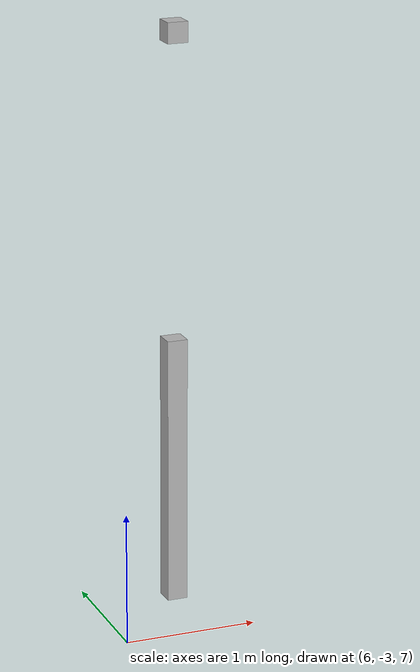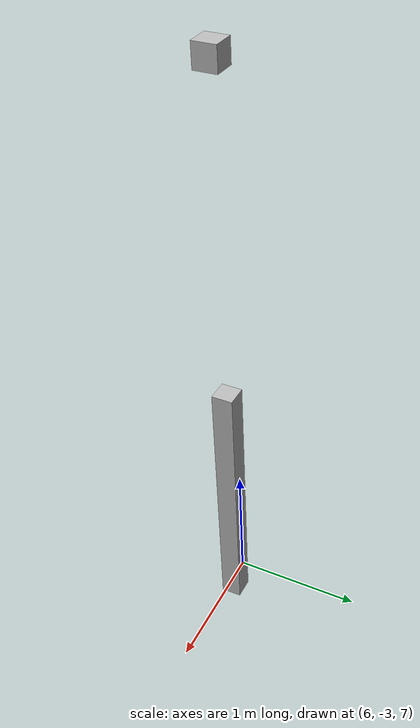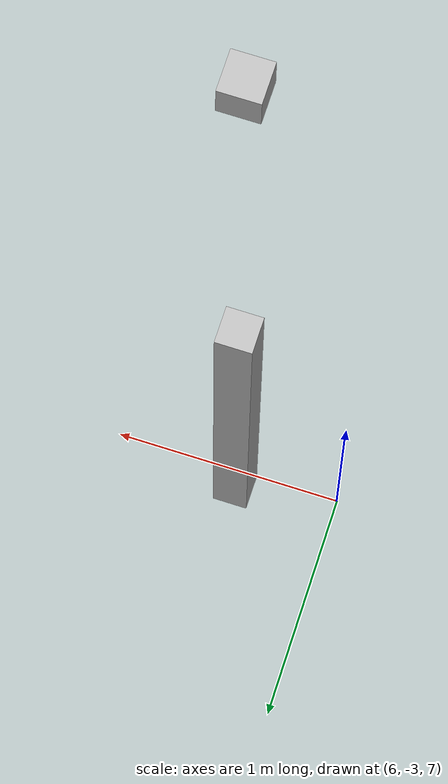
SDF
<sdf version="1.7">
 <world name="default">
  <model name="orthogonal_747_2.000.15_TS">
   <static>1</static>
   <link name="z_link_5_1_6">
    <inertial>
     <mass>1</mass>
     <inertia>
      <ixx>0.166667</ixx>
      <ixy>0</ixy>
      <ixz>0</ixz>
      <iyy>0.166667</iyy>
      <iyz>0</iyz>
      <izz>0.166667</izz>
     </inertia>
    </inertial>
    <pose>12.9 2.15 10.75 0 -0 0</pose>
    <visual name="visual_0">
     <laser_retro>4726</laser_retro>
     <geometry><box><size>0.15 1e-06 2</size></box></geometry>
     <material>
      <script><name>Gazebo/Grey</name><uri>file://media/materials/scripts/gazebo.material</uri></script>
      <shader type="pixel"><normal_map>__default__</normal_map></shader>
      <ambient>0.678 0.498 0.659 1</ambient>
      <diffuse>0.7 0.7 0.7 1</diffuse>
      <specular>0.01 0.01 0.01 1</specular>
      <emissive>0 0 0 1</emissive>
     </material>
     <pose>0 -0.075 0 0 -0 0</pose>
     <transparency>1</transparency>
    </visual>
    <visual name="visual_1">
     <laser_retro>4727</laser_retro>
     <geometry><box><size>0.15 1e-06 2</size></box></geometry>
     <material>
      <script><name>Gazebo/Grey</name><uri>file://media/materials/scripts/gazebo.material</uri></script>
      <shader type="pixel"><normal_map>__default__</normal_map></shader>
      <ambient>0.447 0.624 0.812 1</ambient>
      <diffuse>0.7 0.7 0.7 1</diffuse>
      <specular>0.01 0.01 0.01 1</specular>
      <emissive>0 0 0 1</emissive>
     </material>
     <pose>0 0.075 0 0 -0 0</pose>
     <transparency>1</transparency>
    </visual>
    <visual name="visual_2">
     <laser_retro>4728</laser_retro>
     <geometry><box><size>0.15 0.15 1e-06</size></box></geometry>
     <material>
      <script><name>Gazebo/Grey</name><uri>file://media/materials/scripts/gazebo.material</uri></script>
      <shader type="pixel"><normal_map>__default__</normal_map></shader>
      <ambient>0.988 0.686 0.243 1</ambient>
      <diffuse>0.7 0.7 0.7 1</diffuse>
      <specular>0.01 0.01 0.01 1</specular>
      <emissive>0 0 0 1</emissive>
     </material>
     <pose>0 0 -1 0 -0 0</pose>
     <transparency>1</transparency>
    </visual>
    <visual name="visual_3">
     <laser_retro>4729</laser_retro>
     <geometry><box><size>1e-06 0.15 2</size></box></geometry>
     <material>
      <script><name>Gazebo/Grey</name><uri>file://media/materials/scripts/gazebo.material</uri></script>
      <shader type="pixel"><normal_map>__default__</normal_map></shader>
      <ambient>0.988 0.914 0.31 1</ambient>
      <diffuse>0.7 0.7 0.7 1</diffuse>
      <specular>0.01 0.01 0.01 1</specular>
      <emissive>0 0 0 1</emissive>
     </material>
     <pose>0.075 0 0 0 -0 0</pose>
     <transparency>1</transparency>
    </visual>
    <visual name="visual_4">
     <laser_retro>4730</laser_retro>
     <geometry><box><size>0.15 0.15 1e-06</size></box></geometry>
     <material>
      <script><name>Gazebo/Grey</name><uri>file://media/materials/scripts/gazebo.material</uri></script>
      <shader type="pixel"><normal_map>__default__</normal_map></shader>
      <ambient>0.937 0.161 0.161 1</ambient>
      <diffuse>0.7 0.7 0.7 1</diffuse>
      <specular>0.01 0.01 0.01 1</specular>
      <emissive>0 0 0 1</emissive>
     </material>
     <pose>0 0 1 0 -0 0</pose>
     <transparency>1</transparency>
    </visual>
    <visual name="visual_5">
     <laser_retro>4731</laser_retro>
     <geometry><box><size>1e-06 0.15 2</size></box></geometry>
     <material>
      <script><name>Gazebo/Grey</name><uri>file://media/materials/scripts/gazebo.material</uri></script>
      <shader type="pixel"><normal_map>__default__</normal_map></shader>
      <ambient>0.541 0.886 0.204 1</ambient>
      <diffuse>0.7 0.7 0.7 1</diffuse>
      <specular>0.01 0.01 0.01 1</specular>
      <emissive>0 0 0 1</emissive>
     </material>
     <pose>-0.075 0 0 0 -0 0</pose>
     <transparency>1</transparency>
    </visual>
    <visual name="visual_texture">
     <geometry><box><size>0.149985 0.149985 1.9998</size></box></geometry>
     <material>
      <script>
       <uri>model://BASE_MODELS/simple_block_v2_textured/materials/scripts</uri>
       <uri>model://BASE_MODELS/simple_block_v2_textured/materials/textures</uri>
       <name>metal</name>
      </script>
     </material>
     <laser_retro>4732</laser_retro>
    </visual>
    <collision name="collision">
     <geometry><box><size>0.15 0.15 2</size></box></geometry>
     <surface>
      <friction>
       <ode><mu>1</mu><mu2>1</mu2><fdir1>0 0 0</fdir1><slip1>0</slip1><slip2>0</slip2></ode>
       <torsional>
        <coefficient>1</coefficient>
        <patch_radius>0</patch_radius>
        <surface_radius>0</surface_radius>
        <use_patch_radius>1</use_patch_radius>
        <ode><slip>0</slip></ode>
       </torsional>
      </friction>
      <bounce><restitution_coefficient>0</restitution_coefficient><threshold>1e+06</threshold></bounce>
      <contact>
       <collide_without_contact>0</collide_without_contact>
       <collide_without_contact_bitmask>1</collide_without_contact_bitmask>
       <collide_bitmask>1</collide_bitmask>
       <ode>
        <soft_cfm>0</soft_cfm>
        <soft_erp>0.2</soft_erp>
        <kp>1e+13</kp>
        <kd>1</kd>
        <max_vel>0.01</max_vel>
        <min_depth>0</min_depth>
       </ode>
       <bullet>
        <split_impulse>1</split_impulse>
        <split_impulse_penetration_threshold>-0.01</split_impulse_penetration_threshold>
        <soft_cfm>0</soft_cfm>
        <soft_erp>0.2</soft_erp>
        <kp>1e+13</kp>
        <kd>1</kd>
       </bullet>
      </contact>
     </surface>
    </collision>
   </link>
   <link name="u_link_6_1_6">
    <inertial>
     <mass>1</mass>
     <inertia>
      <ixx>0.166667</ixx>
      <ixy>0</ixy>
      <ixz>0</ixz>
      <iyy>0.166667</iyy>
      <iyz>0</iyz>
      <izz>0.166667</izz>
     </inertia>
    </inertial>
    <pose>12.9 2.15 13.975 0 -0 0</pose>
    <visual name="visual_0">
     <laser_retro>5664</laser_retro>
     <geometry><box><size>0.15 1e-06 0.15</size></box></geometry>
     <material>
      <script><name>Gazebo/Grey</name><uri>file://media/materials/scripts/gazebo.material</uri></script>
      <shader type="pixel"><normal_map>__default__</normal_map></shader>
      <ambient>0.678 0.498 0.659 1</ambient>
      <diffuse>0.7 0.7 0.7 1</diffuse>
      <specular>0.01 0.01 0.01 1</specular>
      <emissive>0 0 0 1</emissive>
     </material>
     <pose>0 -0.075 0 0 -0 0</pose>
     <transparency>1</transparency>
    </visual>
    <visual name="visual_1">
     <laser_retro>5665</laser_retro>
     <geometry><box><size>0.15 1e-06 0.15</size></box></geometry>
     <material>
      <script><name>Gazebo/Grey</name><uri>file://media/materials/scripts/gazebo.material</uri></script>
      <shader type="pixel"><normal_map>__default__</normal_map></shader>
      <ambient>0.447 0.624 0.812 1</ambient>
      <diffuse>0.7 0.7 0.7 1</diffuse>
      <specular>0.01 0.01 0.01 1</specular>
      <emissive>0 0 0 1</emissive>
     </material>
     <pose>0 0.075 0 0 -0 0</pose>
     <transparency>1</transparency>
    </visual>
    <visual name="visual_2">
     <laser_retro>5666</laser_retro>
     <geometry><box><size>0.15 0.15 1e-06</size></box></geometry>
     <material>
      <script><name>Gazebo/Grey</name><uri>file://media/materials/scripts/gazebo.material</uri></script>
      <shader type="pixel"><normal_map>__default__</normal_map></shader>
      <ambient>0.988 0.686 0.243 1</ambient>
      <diffuse>0.7 0.7 0.7 1</diffuse>
      <specular>0.01 0.01 0.01 1</specular>
      <emissive>0 0 0 1</emissive>
     </material>
     <pose>0 0 -0.075 0 -0 0</pose>
     <transparency>1</transparency>
    </visual>
    <visual name="visual_3">
     <laser_retro>5667</laser_retro>
     <geometry><box><size>1e-06 0.15 0.15</size></box></geometry>
     <material>
      <script><name>Gazebo/Grey</name><uri>file://media/materials/scripts/gazebo.material</uri></script>
      <shader type="pixel"><normal_map>__default__</normal_map></shader>
      <ambient>0.988 0.914 0.31 1</ambient>
      <diffuse>0.7 0.7 0.7 1</diffuse>
      <specular>0.01 0.01 0.01 1</specular>
      <emissive>0 0 0 1</emissive>
     </material>
     <pose>0.075 0 0 0 -0 0</pose>
     <transparency>1</transparency>
    </visual>
    <visual name="visual_4">
     <laser_retro>5668</laser_retro>
     <geometry><box><size>0.15 0.15 1e-06</size></box></geometry>
     <material>
      <script><name>Gazebo/Grey</name><uri>file://media/materials/scripts/gazebo.material</uri></script>
      <shader type="pixel"><normal_map>__default__</normal_map></shader>
      <ambient>0.937 0.161 0.161 1</ambient>
      <diffuse>0.7 0.7 0.7 1</diffuse>
      <specular>0.01 0.01 0.01 1</specular>
      <emissive>0 0 0 1</emissive>
     </material>
     <pose>0 0 0.075 0 -0 0</pose>
     <transparency>1</transparency>
    </visual>
    <visual name="visual_5">
     <laser_retro>5669</laser_retro>
     <geometry><box><size>1e-06 0.15 0.15</size></box></geometry>
     <material>
      <script><name>Gazebo/Grey</name><uri>file://media/materials/scripts/gazebo.material</uri></script>
      <shader type="pixel"><normal_map>__default__</normal_map></shader>
      <ambient>0.541 0.886 0.204 1</ambient>
      <diffuse>0.7 0.7 0.7 1</diffuse>
      <specular>0.01 0.01 0.01 1</specular>
      <emissive>0 0 0 1</emissive>
     </material>
     <pose>-0.075 0 0 0 -0 0</pose>
     <transparency>1</transparency>
    </visual>
    <visual name="visual_texture">
     <geometry><box><size>0.149985 0.149985 0.149985</size></box></geometry>
     <material>
      <script>
       <uri>model://BASE_MODELS/simple_block_v2_textured/materials/scripts</uri>
       <uri>model://BASE_MODELS/simple_block_v2_textured/materials/textures</uri>
       <name>metal</name>
      </script>
     </material>
     <laser_retro>5670</laser_retro>
    </visual>
    <collision name="collision">
     <geometry><box><size>0.15 0.15 0.15</size></box></geometry>
     <surface>
      <friction>
       <ode><mu>1</mu><mu2>1</mu2><fdir1>0 0 0</fdir1><slip1>0</slip1><slip2>0</slip2></ode>
       <torsional>
        <coefficient>1</coefficient>
        <patch_radius>0</patch_radius>
        <surface_radius>0</surface_radius>
        <use_patch_radius>1</use_patch_radius>
        <ode><slip>0</slip></ode>
       </torsional>
      </friction>
      <bounce><restitution_coefficient>0</restitution_coefficient><threshold>1e+06</threshold></bounce>
      <contact>
       <collide_without_contact>0</collide_without_contact>
       <collide_without_contact_bitmask>1</collide_without_contact_bitmask>
       <collide_bitmask>1</collide_bitmask>
       <ode>
        <soft_cfm>0</soft_cfm>
        <soft_erp>0.2</soft_erp>
        <kp>1e+13</kp>
        <kd>1</kd>
        <max_vel>0.01</max_vel>
        <min_depth>0</min_depth>
       </ode>
       <bullet>
        <split_impulse>1</split_impulse>
        <split_impulse_penetration_threshold>-0.01</split_impulse_penetration_threshold>
        <soft_cfm>0</soft_cfm>
        <soft_erp>0.2</soft_erp>
        <kp>1e+13</kp>
        <kd>1</kd>
       </bullet>
      </contact>
     </surface>
    </collision>
   </link>
   <pose>-6.47624 -5 -2.5 0 -0 0</pose>
  </model>
 </world>
</sdf>
